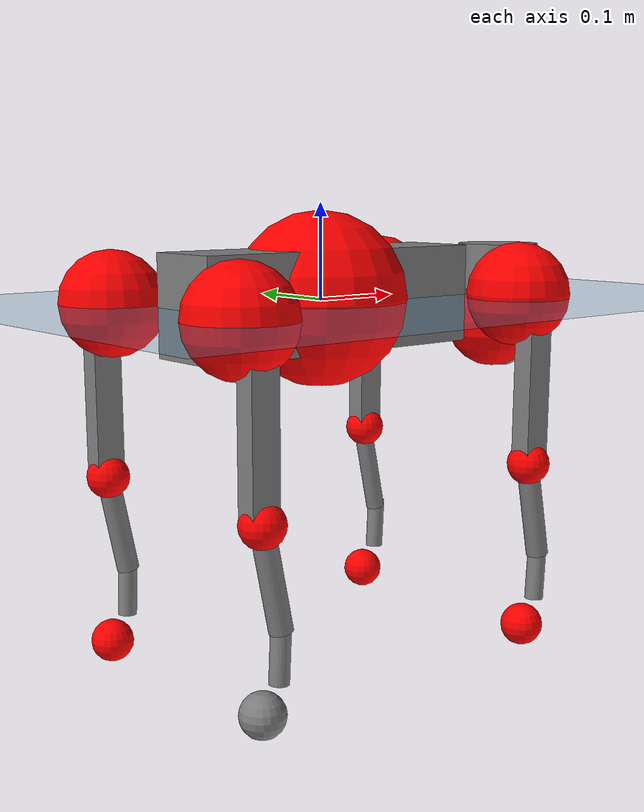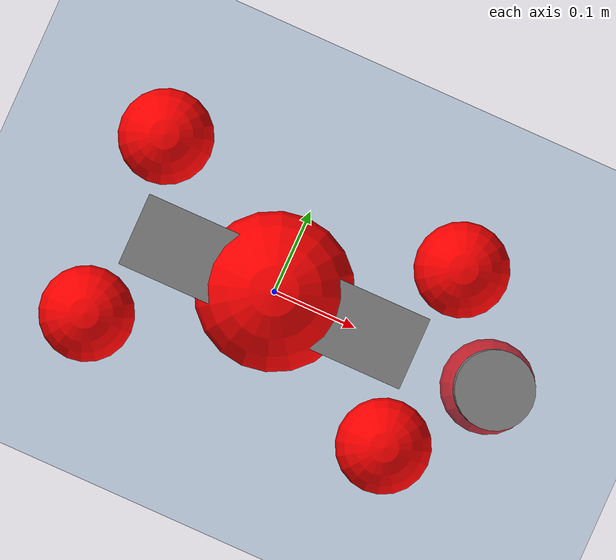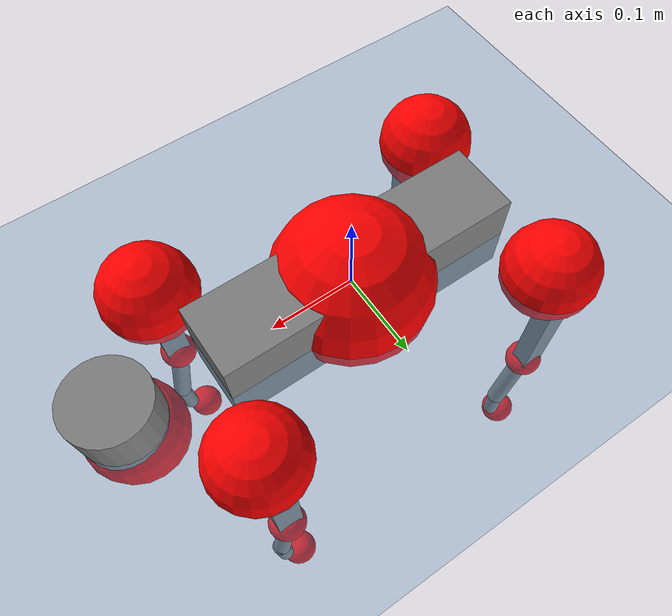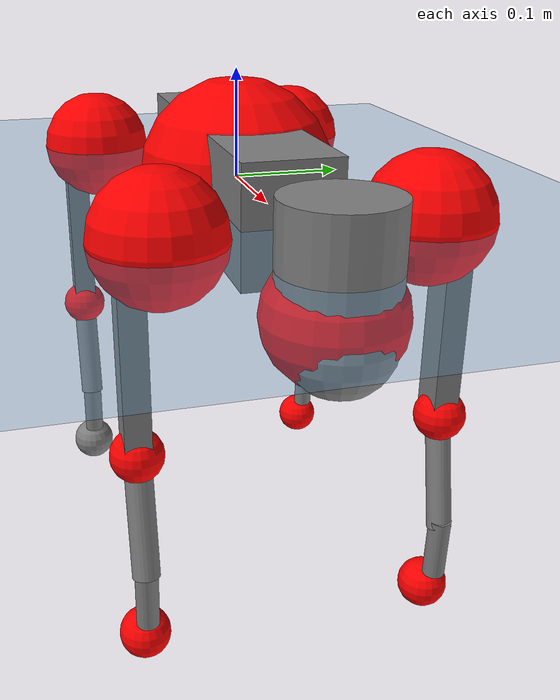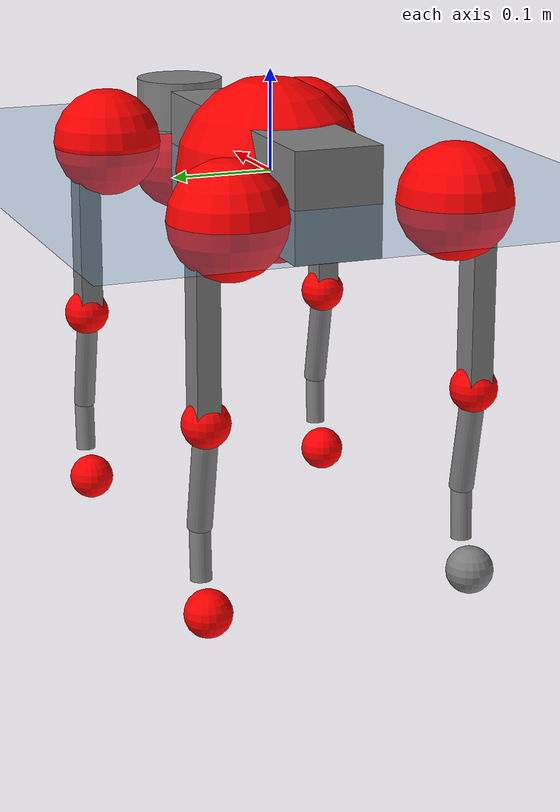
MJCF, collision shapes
<mujoco model="go2">
  <compiler angle="radian" assetdir="assets" balanceinertia="true" inertiafromgeom="false"/>

  <option timestep="0.005" density="1.2" viscosity="2e-05"/>

  <size nkey="1"/>

  <visual>
    <quality shadowsize="8192"/>
    <map shadowclip="0.5"/>
  </visual>

  <default>
    <default class="/">
      <geom contype="0" conaffinity="0" group="1" solref="-1000 -80"/>
      <site size="0.01 0.005 0.005" group="5"/>
      <general forcelimited="true" biastype="affine" gainprm="20" biasprm="0 -20 -0.5"/>
      <default class="go2">
        <joint armature="0.01" damping="0.01" frictionloss="0.2"/>
        <geom condim="1" margin="0.001"/>
        <default class="visual">
          <geom type="mesh" group="2"/>
        </default>
        <default class="collision">
          <geom group="3"/>
          <default class="foot">
            <geom size="0.022 0 0" condim="6" priority="1" friction="0.8 0.02 0.01" solimp="0.015 1 0.022"/>
          </default>
        </default>
        <default class="reward_collision_sphere">
          <geom group="5" rgba="1 0 0 1"/>
        </default>
      </default>
    </default>
  </default>

  <asset>
    <texture type="skybox" colorspace="auto" name="//unnamed_texture_0" builtin="gradient" rgb1="0.95 0.95 0.95" rgb2="0.95 0.95 0.95" width="100" height="600"/>
    <texture type="2d" colorspace="auto" name="texplane" builtin="checker" rgb1="0.345 0.575 0.748" rgb2="0.345 0.575 0.748" markrgb="1 1 1" width="512" height="512"/>
    <material name="MatPlane" class="/" texture="texplane" texuniform="true" texrepeat="2 2" specular="0.9"/>
    <material name="metal" class="/" rgba="0.9 0.95 0.95 1"/>
    <material name="black" class="/" rgba="0 0 0 1"/>
    <material name="white" class="/"/>
    <material name="gray" class="/" rgba="0.671705 0.692426 0.77427 1"/>
    <mesh name="base_0" class="/" file="base_0.obj"/>
    <mesh name="base_1" class="/" file="base_1.obj"/>
    <mesh name="base_2" class="/" file="base_2.obj"/>
    <mesh name="base_3" class="/" file="base_3.obj"/>
    <mesh name="base_4" class="/" file="base_4.obj"/>
    <mesh name="hip_0" class="/" file="hip_0.obj"/>
    <mesh name="hip_1" class="/" file="hip_1.obj"/>
    <mesh name="thigh_0" class="/" file="thigh_0.obj"/>
    <mesh name="thigh_1" class="/" file="thigh_1.obj"/>
    <mesh name="thigh_mirror_0" class="/" file="thigh_mirror_0.obj"/>
    <mesh name="thigh_mirror_1" class="/" file="thigh_mirror_1.obj"/>
    <mesh name="calf_0" class="/" file="calf_0.obj"/>
    <mesh name="calf_1" class="/" file="calf_1.obj"/>
    <mesh name="calf_mirror_0" class="/" file="calf_mirror_0.obj"/>
    <mesh name="calf_mirror_1" class="/" file="calf_mirror_1.obj"/>
    <mesh name="foot" class="/" file="foot.obj"/>
  </asset>

  <worldbody>
    <geom name="floor" class="/" size="100 100 0.125" type="plane" group="0" material="MatPlane"/>
    <light name="toplight_shadow" class="/" pos="0 0 5" dir="0.0990148 0.0990148 -0.990148" type="directional" ambient="0.04 0.04 0.04" diffuse="0.55 0.55 0.55" specular="0.12 0.12 0.12"/>
    <light name="toplight_fill" class="/" pos="0 0 5" dir="0.0990148 0.0990148 -0.990148" type="directional" castshadow="false" ambient="0.04 0.04 0.04" diffuse="0.3 0.3 0.3" specular="0.08 0.08 0.08"/>
    <body name="trunk" childclass="go2" pos="-0.000146313 0.000463769 0.000857068" quat="1 0.000127331 9.14349e-05 1.52324e-05">
      <inertial pos="0.020913 -0.000671289 -0.00438287" quat="-0.00078675 0.716148 -0.00097682 0.697947" mass="5.39081" diaginertia="0.0883473 0.0741282 0.0120324"/>
      <joint name="//unnamed_joint_0" type="free" armature="0" damping="0" frictionloss="0"/>
      <geom name="//unnamed_geom_1" class="visual" material="black" mesh="base_0"/>
      <geom name="//unnamed_geom_2" class="visual" material="black" mesh="base_1"/>
      <geom name="//unnamed_geom_3" class="visual" material="black" mesh="base_2"/>
      <geom name="//unnamed_geom_4" class="visual" material="white" mesh="base_3"/>
      <geom name="//unnamed_geom_5" class="visual" material="gray" mesh="base_4"/>
      <geom name="trunk_1" class="collision" size="0.173479 0.0431161 0.0525693" type="box"/>
      <geom name="trunk_2" class="collision" size="0.0461134 0.0415021" pos="0.273046 0 0.0086356" type="cylinder"/>
      <geom name="trunk_3" class="collision" size="0.0433466" pos="0.28071 0 -0.0518136"/>
      <geom name="//unnamed_geom_9" class="reward_collision_sphere" size="0.0922269"/>
      <geom name="//unnamed_geom_10" class="reward_collision_sphere" size="0.0553361" pos="0.268256 0 -0.0388602"/>
      <site name="imu" pos="-0.0279171 -0.0107256 0.0412466" size="0.00922269"/>
      <camera name="track" pos="0 -1.89038 0" quat="0.707107 0.707107 0 0" mode="trackcom"/>
      <camera name="ego_camera" pos="0.298914 0 0.0388602" quat="-0.5 -0.5 0.5 0.5"/>
      <body name="FL_hip" pos="0.185015 0.0436621 0.00232647" quat="0.999999 -0.000437387 0.000106788 0.000929476">
        <inertial pos="-0.0042506 0.00243798 0.000286092" quat="0.496477 0.499727 0.504763 0.498997" mass="0.542456" diaginertia="0.000727498 0.00046019 0.000232834"/>
        <joint name="FL_hip_joint" pos="0 0 0" axis="0.999988 -0.00225292 -0.00433389" range="-1.01733 1.04495" armature="0.00941773" damping="0.00748589" frictionloss="0.180708"/>
        <geom name="//unnamed_geom_11" class="visual" material="metal" mesh="hip_0"/>
        <geom name="//unnamed_geom_12" class="visual" material="gray" mesh="hip_1"/>
        <geom name="//unnamed_geom_13" class="collision" size="0.0424244 0.0184454" pos="0 0.0756152 0" quat="0.707107 0.707107 0 0" type="cylinder"/>
        <geom name="//unnamed_geom_14" class="reward_collision_sphere" size="0.0553361" pos="0 0.0661633 0"/>
        <body name="FL_thigh" pos="3.8374e-05 0.0905523 0.00217517" quat="1 8.28427e-06 -6.08006e-06 4.02513e-07">
          <inertial pos="-0.00348752 -0.0225518 -0.0302836" quat="0.828938 0.0838765 -0.0172602 0.552746" mass="0.901217" diaginertia="0.00482055 0.00444757 0.000422777"/>
          <joint name="FL_thigh_joint" pos="0 0 0" axis="0.00165768 0.999999 0.000354635" range="-1.56879 3.53343" armature="0.00954738" damping="0" frictionloss="0.183906"/>
          <geom name="//unnamed_geom_15" class="visual" material="metal" mesh="thigh_0"/>
          <geom name="//unnamed_geom_16" class="visual" material="gray" mesh="thigh_1"/>
          <geom name="//unnamed_geom_17" class="collision" size="0.0982216 0.0112978 0.0156786" pos="0 0 -0.0919691" quat="0.707107 0 0.707107 0" type="box"/>
          <body name="FL_calf" pos="0.00148121 0.00168681 -0.183878" quat="1 -6.58081e-06 5.14439e-05 -8.57758e-05">
            <inertial pos="0.00689237 0.000388782 -0.121577" quat="0.710623 0.00150843 -0.0044979 0.703557" mass="0.192235" diaginertia="0.00119791 0.0011024 2.54075e-05"/>
            <joint name="FL_calf_joint" pos="0 0 0" axis="0.00138341 0.999996 -0.00253162" range="-2.72804 -0.860469" armature="0.00911968" damping="0.0035686" frictionloss="0.179605"/>
            <geom name="//unnamed_geom_18" class="visual" material="gray" mesh="calf_0"/>
            <geom name="//unnamed_geom_19" class="visual" material="black" mesh="calf_1"/>
            <geom name="FL_calf0" class="collision" size="0.0110672 0.0553361" pos="0.00766445 0 -0.0518136" quat="0.994493 0 -0.104807 0" type="cylinder"/>
            <geom name="//unnamed_geom_21" class="collision" size="0.010145 0.0299737" pos="0.0191611 0 -0.127807" quat="0.999688 0 0.0249974 0" type="cylinder"/>
            <geom name="//unnamed_geom_22" class="visual" pos="0 0 -0.183938" quat="1 0 0 0" material="black" mesh="foot"/>
            <geom name="FL_foot" class="foot" size="0.0168795" pos="-0.00191611 0 -0.183938"/>
            <geom name="//unnamed_geom_24" class="reward_collision_sphere" size="0.0230567"/>
            <geom name="//unnamed_geom_25" class="reward_collision_sphere" size="0.0230567" pos="-0.00191611 0 -0.183938"/>
            <site name="FL_foot" class="foot" pos="-0.00191611 0 -0.183938" size="0.00922269"/>
          </body>
        </body>
      </body>
      <body name="FR_hip" pos="0.185126 -0.0440082 0.00228194" quat="1 -4.62098e-05 4.1223e-05 1.02905e-05">
        <inertial pos="-0.00454052 -0.00164524 -0.000351596" quat="0.495861 0.502356 0.497848 0.503893" mass="0.542855" diaginertia="0.000736634 0.000453793 0.000236138"/>
        <joint name="FR_hip_joint" pos="0 0 0" axis="1 -0.000307585 0.000601105" stiffness="0.00556008" range="-1.04256 1.05399" armature="0.00918402" damping="0.0110665" frictionloss="0.176515"/>
        <geom name="//unnamed_geom_26" class="visual" pos="0 7.11134e-10 3.0502e-08" quat="4.63268e-05 1 0 0" material="metal" mesh="hip_0"/>
        <geom name="//unnamed_geom_27" class="visual" pos="0 1.15283e-09 -7.54431e-08" quat="4.63268e-05 1 0 0" material="gray" mesh="hip_1"/>
        <geom name="//unnamed_geom_28" class="collision" size="0.0424244 0.0184454" pos="0 -0.0756152 0" quat="0.707107 0.707107 0 0" type="cylinder"/>
        <geom name="//unnamed_geom_29" class="reward_collision_sphere" size="0.0553361" pos="0 -0.0661633 0"/>
        <body name="FR_thigh" pos="-0.000472596 -0.0902765 0.000113161" quat="1 0.000207577 0.000162633 0.000298413">
          <inertial pos="-0.00377893 0.0212443 -0.0299252" quat="0.557573 -0.0263422 0.0896796 0.824849" mass="0.914494" diaginertia="0.00495449 0.00450535 0.000431387"/>
          <joint name="FR_thigh_joint" pos="0 0 0" axis="-0.00223158 -0.999997 -0.00117898" range="-3.52586 1.58267" armature="0.00892573" damping="0.014201" frictionloss="0.182785"/>
          <geom name="//unnamed_geom_30" class="visual" material="metal" mesh="thigh_mirror_0"/>
          <geom name="//unnamed_geom_31" class="visual" material="gray" mesh="thigh_mirror_1"/>
          <geom name="//unnamed_geom_32" class="collision" size="0.0982216 0.0112978 0.0156786" pos="0 0 -0.0919691" quat="0.707107 0 0.707107 0" type="box"/>
          <body name="FR_calf" pos="-0.000261047 0.000542035 -0.182995" quat="1 -1.12338e-05 8.65757e-06 2.45185e-05">
            <inertial pos="0.00601019 0.000287129 -0.120127" quat="0.70562 -0.00234153 0.00172395 0.708584" mass="0.18285" diaginertia="0.00115481 0.00110177 2.43588e-05"/>
            <joint name="FR_calf_joint" pos="0 0 0" axis="0.00227806 -0.999975 -0.00669084" range="0.831371 2.73948" armature="0.00935634" damping="0.00971271" frictionloss="0.184076"/>
            <geom name="//unnamed_geom_33" class="visual" material="gray" mesh="calf_mirror_0"/>
            <geom name="//unnamed_geom_34" class="visual" material="black" mesh="calf_mirror_1"/>
            <geom name="FR_calf0" class="collision" size="0.0119895 0.0553361" pos="0.00958056 0 -0.0518136" quat="0.995004 0 -0.0998334 0" type="cylinder"/>
            <geom name="//unnamed_geom_36" class="collision" size="0.010145 0.0299737" pos="0.0191611 0 -0.127807" quat="0.999688 0 0.0249974 0" type="cylinder"/>
            <geom name="//unnamed_geom_37" class="visual" pos="0 0 -0.183938" quat="1 0 0 0" material="black" mesh="foot"/>
            <geom name="FR_foot" class="foot" size="0.0221931" pos="-0.00191611 0 -0.183938"/>
            <geom name="//unnamed_geom_39" class="reward_collision_sphere" size="0.0230567"/>
            <geom name="//unnamed_geom_40" class="reward_collision_sphere" size="0.0230567" pos="-0.00191611 0 -0.183938"/>
            <site name="FR_foot" class="foot" pos="-0.00191611 0 -0.183938" size="0.00922269"/>
          </body>
        </body>
      </body>
      <body name="RL_hip" pos="-0.185142 0.0447732 -0.00174358" quat="1 -0.000201634 -0.000163686 3.48407e-05">
        <inertial pos="0.00508847 0.00174814 -0.00179618" quat="0.507497 0.496882 0.496399 0.499142" mass="0.538254" diaginertia="0.000719075 0.000447222 0.000230066"/>
        <joint name="RL_hip_joint" pos="0 0 0" axis="-0.999874 0.0149943 0.00512684" range="-1.00704 1.07443" armature="0.00915203" damping="0.00281128" frictionloss="0.197743"/>
        <geom name="//unnamed_geom_41" class="visual" pos="-8.23216e-10 0 -1.61369e-07" quat="4.63268e-05 0 1 0" material="metal" mesh="hip_0"/>
        <geom name="//unnamed_geom_42" class="visual" pos="-1.33453e-09 0 -1.43112e-07" quat="4.63268e-05 0 1 0" material="gray" mesh="hip_1"/>
        <geom name="//unnamed_geom_43" class="collision" size="0.0424244 0.0184454" pos="0 0.0756152 0" quat="0.707107 0.707107 0 0" type="cylinder"/>
        <geom name="//unnamed_geom_44" class="reward_collision_sphere" size="0.0553361" pos="0 0.0661633 0"/>
        <body name="RL_thigh" pos="0.000203938 0.0902685 -0.00163301" quat="1 2.35393e-06 -1.35891e-05 -1.6243e-05">
          <inertial pos="-0.00478616 -0.0202653 -0.0304396" quat="0.827159 0.090456 -0.021927 0.554206" mass="0.890173" diaginertia="0.00464005 0.00433571 0.000408837"/>
          <joint name="RL_thigh_joint" pos="0 0 0" axis="-0.00533648 0.999979 -0.00354149" stiffness="0.00265852" range="-0.551986 4.54299" armature="0.00879337" damping="0.00946446" frictionloss="0.186706"/>
          <geom name="//unnamed_geom_45" class="visual" material="metal" mesh="thigh_0"/>
          <geom name="//unnamed_geom_46" class="visual" material="gray" mesh="thigh_1"/>
          <geom name="//unnamed_geom_47" class="collision" size="0.0982216 0.0112978 0.0156786" pos="0 0 -0.0919691" quat="0.707107 0 0.707107 0" type="box"/>
          <body name="RL_calf" pos="0.000660715 -0.00221509 -0.184693" quat="1 4.96494e-05 -4.2617e-05 0.00011157">
            <inertial pos="0.00532102 5.74961e-05 -0.122216" quat="0.712769 0.0021486 -0.00250303 0.701391" mass="0.188994" diaginertia="0.00120425 0.0010933 2.58776e-05"/>
            <joint name="RL_calf_joint" pos="0 0 0" axis="-0.00964207 0.999945 -0.0042305" range="-2.73745 -0.837475" armature="0.00955763" damping="9.59924e-05" frictionloss="0.179508"/>
            <geom name="//unnamed_geom_48" class="visual" material="gray" mesh="calf_0"/>
            <geom name="//unnamed_geom_49" class="visual" material="black" mesh="calf_1"/>
            <geom name="RL_calf0" class="collision" size="0.0119895 0.0553361" pos="0.00958056 0 -0.0518136" quat="0.995004 0 -0.0998334 0" type="cylinder"/>
            <geom name="//unnamed_geom_51" class="collision" size="0.010145 0.0299737" pos="0.0191611 0 -0.127807" quat="0.999688 0 0.0249974 0" type="cylinder"/>
            <geom name="//unnamed_geom_52" class="visual" pos="0 0 -0.183938" quat="1 0 0 0" material="black" mesh="foot"/>
            <geom name="RL_foot" class="foot" size="0.0182417" pos="-0.00191611 0 -0.183938"/>
            <geom name="//unnamed_geom_54" class="reward_collision_sphere" size="0.0230567"/>
            <geom name="//unnamed_geom_55" class="reward_collision_sphere" size="0.0230567" pos="-0.00191611 0 -0.183938"/>
            <site name="RL_foot" class="foot" pos="-0.00191611 0 -0.183938" size="0.00922269"/>
          </body>
        </body>
      </body>
      <body name="RR_hip" pos="-0.18539 -0.0442536 -0.00160079" quat="1 -0.000378248 -0.00020189 -9.67292e-05">
        <inertial pos="0.00481523 -0.00054298 -0.000216487" quat="0.499322 0.497177 0.49815 0.505311" mass="0.51217" diaginertia="0.000693194 0.000437834 0.0002249"/>
        <joint name="RR_hip_joint" pos="0 0 0" axis="-0.999994 -0.00341887 -0.000302092" range="-1.06655 1.03281" armature="0.00956155" damping="0.000229069" frictionloss="0.175873"/>
        <geom name="//unnamed_geom_56" class="visual" pos="8.22771e-10 7.11134e-10 -1.91871e-07" quat="2.14617e-09 4.63268e-05 4.63268e-05 -1" material="metal" mesh="hip_0"/>
        <geom name="//unnamed_geom_57" class="visual" pos="1.33563e-09 1.15283e-09 -6.76685e-08" quat="2.14617e-09 4.63268e-05 4.63268e-05 -1" material="gray" mesh="hip_1"/>
        <geom name="//unnamed_geom_58" class="collision" size="0.0424244 0.0184454" pos="0 -0.0756152 0" quat="0.707107 0.707107 0 0" type="cylinder"/>
        <geom name="//unnamed_geom_59" class="reward_collision_sphere" size="0.0553361" pos="0 -0.0661633 0"/>
        <body name="RR_thigh" pos="0.000206094 -0.0911653 0.000564094" quat="1 0.000156001 -7.24637e-05 -0.000100682">
          <inertial pos="-0.00306216 0.0214153 -0.0282774" quat="0.552025 -0.0200327 0.0841035 0.829334" mass="0.884575" diaginertia="0.00469245 0.00433145 0.000421536"/>
          <joint name="RR_thigh_joint" pos="0 0 0" axis="0.00303949 -0.999938 0.0107244" range="-4.57224 0.552441" armature="0.0090913" damping="0.0107034" frictionloss="0.175967"/>
          <geom name="//unnamed_geom_60" class="visual" material="metal" mesh="thigh_mirror_0"/>
          <geom name="//unnamed_geom_61" class="visual" material="gray" mesh="thigh_mirror_1"/>
          <geom name="//unnamed_geom_62" class="collision" size="0.0982216 0.0112978 0.0156786" pos="0 0 -0.0919691" quat="0.707107 0 0.707107 0" type="box"/>
          <body name="RR_calf" pos="0.00266171 -0.000730951 -0.184621" quat="1 -1.17821e-05 1.34512e-05 -2.59281e-05">
            <inertial pos="0.00492627 0.000656305 -0.122238" quat="0.703307 -0.00337587 0.00323437 0.710871" mass="0.188673" diaginertia="0.00120554 0.00109974 2.56258e-05"/>
            <joint name="RR_calf_joint" pos="0 0 0" axis="0.00609392 -0.999978 0.00260354" range="0.841595 2.7143" armature="0.0096283" damping="0.0033021" frictionloss="0.187346"/>
            <geom name="//unnamed_geom_63" class="visual" material="gray" mesh="calf_mirror_0"/>
            <geom name="//unnamed_geom_64" class="visual" material="black" mesh="calf_mirror_1"/>
            <geom name="RR_calf0" class="collision" size="0.0119895 0.0553361" pos="0.00958056 0 -0.0518136" quat="0.995004 0 -0.0998334 0" type="cylinder"/>
            <geom name="//unnamed_geom_66" class="collision" size="0.010145 0.0299737" pos="0.0191611 0 -0.127807" quat="0.999688 0 0.0249974 0" type="cylinder"/>
            <geom name="//unnamed_geom_67" class="visual" pos="0 0 -0.183938" quat="1 0 0 0" material="black" mesh="foot"/>
            <geom name="RR_foot" class="foot" size="0.0232761" pos="-0.00191611 0 -0.183938"/>
            <geom name="//unnamed_geom_69" class="reward_collision_sphere" size="0.0230567"/>
            <geom name="//unnamed_geom_70" class="reward_collision_sphere" size="0.0230567" pos="-0.00191611 0 -0.183938"/>
            <site name="RR_foot" class="foot" pos="-0.00191611 0 -0.183938" size="0.00922269"/>
          </body>
        </body>
      </body>
    </body>
  </worldbody>

  <contact>
    <pair class="/" geom1="floor" geom2="FL_foot" name="//unnamed_contact_0"/>
    <pair class="/" geom1="floor" geom2="FR_foot" name="//unnamed_contact_1"/>
    <pair class="/" geom1="floor" geom2="RL_foot" name="//unnamed_contact_2"/>
    <pair class="/" geom1="floor" geom2="RR_foot" name="//unnamed_contact_3"/>
  </contact>

  <actuator>
    <general name="FL_hip" class="/" joint="FL_hip_joint" forcerange="-22.1762 22.1762" gainprm="18.8687" biasprm="0 -18.8687 -0.473934"/>
    <general name="FL_thigh" class="/" joint="FL_thigh_joint" forcerange="-22.8242 22.8242" gainprm="18.8687" biasprm="0 -18.8687 -0.473934"/>
    <general name="FL_calf" class="/" joint="FL_calf_joint" forcerange="-39.4277 39.4277" gainprm="18.8687" biasprm="0 -18.8687 -0.473934"/>
    <general name="FR_hip" class="/" joint="FR_hip_joint" forcerange="-22.2098 22.2098" gainprm="18.8687" biasprm="0 -18.8687 -0.473934"/>
    <general name="FR_thigh" class="/" joint="FR_thigh_joint" forcerange="-21.3718 21.3718" gainprm="18.8687" biasprm="0 -18.8687 -0.473934"/>
    <general name="FR_calf" class="/" joint="FR_calf_joint" forcerange="-45.1438 45.1438" gainprm="18.8687" biasprm="0 -18.8687 -0.473934"/>
    <general name="RL_hip" class="/" joint="RL_hip_joint" forcerange="-23.1859 23.1859" gainprm="18.8687" biasprm="0 -18.8687 -0.473934"/>
    <general name="RL_thigh" class="/" joint="RL_thigh_joint" forcerange="-21.1807 21.1807" gainprm="18.8687" biasprm="0 -18.8687 -0.473934"/>
    <general name="RL_calf" class="/" joint="RL_calf_joint" forcerange="-41.9422 41.9422" gainprm="18.8687" biasprm="0 -18.8687 -0.473934"/>
    <general name="RR_hip" class="/" joint="RR_hip_joint" forcerange="-21.9338 21.9338" gainprm="18.8687" biasprm="0 -18.8687 -0.473934"/>
    <general name="RR_thigh" class="/" joint="RR_thigh_joint" forcerange="-20.1532 20.1532" gainprm="18.8687" biasprm="0 -18.8687 -0.473934"/>
    <general name="RR_calf" class="/" joint="RR_calf_joint" forcerange="-40.8587 40.8587" gainprm="18.8687" biasprm="0 -18.8687 -0.473934"/>
  </actuator>

  <sensor>
    <gyro site="imu" name="imu_angular_velocity"/>
    <velocimeter site="imu" name="imu_linear_velocity"/>
    <framelinvel objtype="site" objname="FL_foot" name="FL_foot_global_linear_velocity"/>
    <framelinvel objtype="site" objname="FR_foot" name="FR_foot_global_linear_velocity"/>
    <framelinvel objtype="site" objname="RL_foot" name="RL_foot_global_linear_velocity"/>
    <framelinvel objtype="site" objname="RR_foot" name="RR_foot_global_linear_velocity"/>
  </sensor>

  <keyframe>
    <key name="home" qpos="0 0 0.325 1 0 0 0 0.1 0.8 -1.5 -0.1 -0.8 1.5 -0.1 0.8 -1.5 0.1 -0.8 1.5"/>
  </keyframe>
</mujoco>
